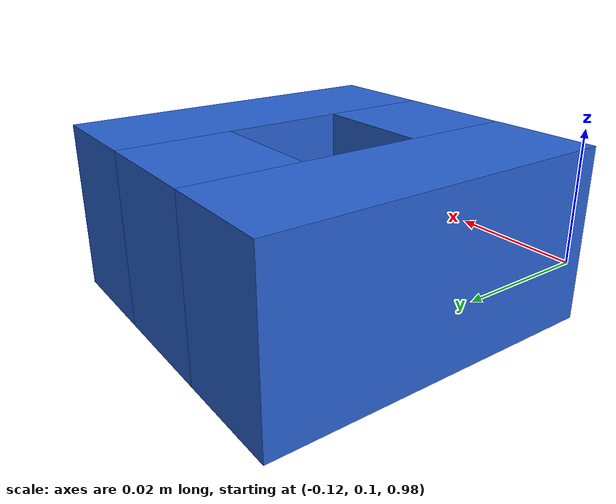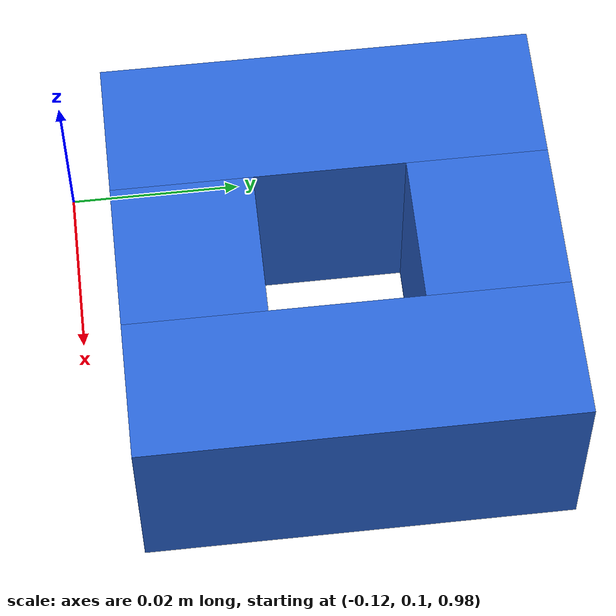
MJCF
<mujoco model="hanoi_disk_large">
  <asset>
    <material name="hanoi_disk_large_mat" rgba="0.16 0.39 0.83 1" specular="0.35" shininess="0.18"/>
    <material name="hanoi_disk_large_collision_mat" rgba="0.55 0.55 0.55 1" specular="0.0" shininess="0.0" reflectance="0.0"/>
  </asset>

  <worldbody>
    <body name="hanoi_disk_large" pos="-0.10 0.13 0.98725">
      <freejoint name="hanoi_disk_large_joint"/>

      <!-- Parameters:
           inner_half = 0.01748
           outer_half = 0.050
           pos = 0.03374
           thickness = 0.01626 -->

      <!-- Y-direction visual plates (middle segment only, x half-length = inner_half) -->
      <geom name="hanoi_disk_large_visual_pos_y" type="box" pos="0 0.01687 0" size="0.00874 0.00813 0.012375"
            material="hanoi_disk_large_mat" contype="0" conaffinity="0" density="0" group="1"/>
      <geom name="hanoi_disk_large_visual_neg_y" type="box" pos="0 -0.01687 0" size="0.00874 0.00813 0.012375"
            material="hanoi_disk_large_mat" contype="0" conaffinity="0" density="0" group="1"/>

      <!-- X-direction visual plates (outer segment, y half-length = outer_half) -->
      <geom name="hanoi_disk_large_visual_pos_x" type="box" pos="0.01687 0 0" size="0.00813 0.025 0.012375"
            material="hanoi_disk_large_mat" contype="0" conaffinity="0" density="0" group="1"/>
      <geom name="hanoi_disk_large_visual_neg_x" type="box" pos="-0.01687 0 0" size="0.00813 0.025 0.012375"
            material="hanoi_disk_large_mat" contype="0" conaffinity="0" density="0" group="1"/>

      <!-- Collision geometry (identical to visual geometry) -->
      <geom name="hanoi_disk_large_collision_pos_y" type="box" pos="0 0.01687 0" size="0.00874 0.00813 0.012375"
            material="hanoi_disk_large_collision_mat" density="450" mass="0.025" friction="1.1 0.02 0.002" group="3"/>
      <geom name="hanoi_disk_large_collision_neg_y" type="box" pos="0 -0.01687 0" size="0.00874 0.00813 0.012375"
            material="hanoi_disk_large_collision_mat" density="450" mass="0.025" friction="1.1 0.02 0.002" group="3"/>
      <geom name="hanoi_disk_large_collision_pos_x" type="box" pos="0.01687 0 0" size="0.00813 0.025 0.012375"
            material="hanoi_disk_large_collision_mat" density="450" mass="0.025" friction="1.1 0.02 0.002" group="3"/>
      <geom name="hanoi_disk_large_collision_neg_x" type="box" pos="-0.01687 0 0" size="0.00813 0.025 0.012375"
            material="hanoi_disk_large_collision_mat" density="450" mass="0.025" friction="1.1 0.02 0.002" group="3"/>

      <!-- Reference sites -->
      <site name="hanoi_disk_large_center_site" pos="0 0 0" size="0.002" rgba="0 0 0 0"/>
      <site name="hanoi_disk_large_top_site" pos="0 0 0.012375" size="0.002" rgba="0 0 0 0"/>
      <site name="hanoi_disk_large_bottom_site" pos="0 0 -0.012375" size="0.002" rgba="0 0 0 0"/>

    </body>
  </worldbody>
</mujoco>
